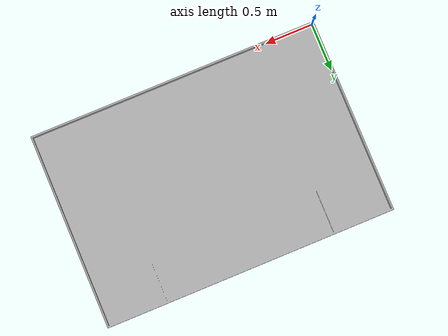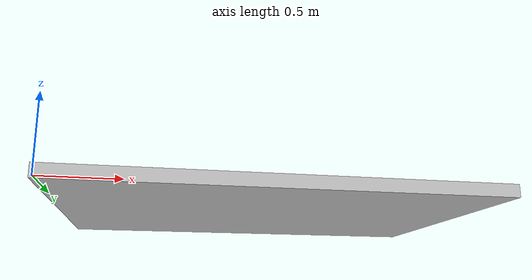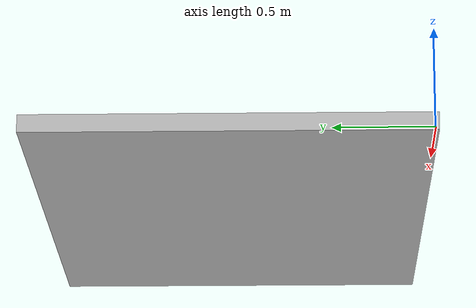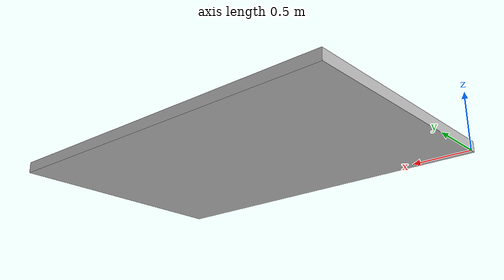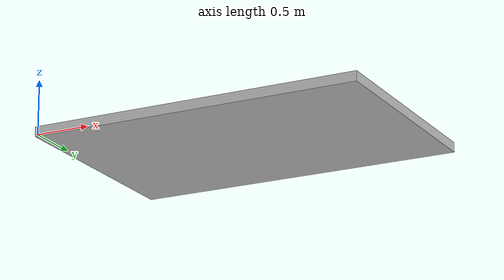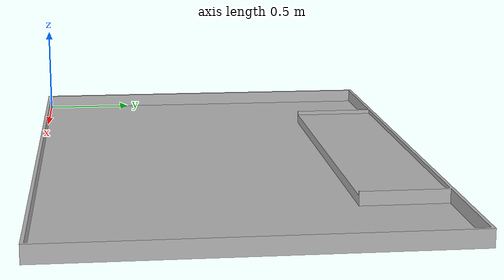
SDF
<?xml version='1.0'?>
<sdf version='1.5'>
    <model name="field">
        <static>1</static>
        <pose>0 0 -0.017 1.5708 0 -1.5708</pose>
        <link name="map">
            <collision name="collision">
                <geometry>
                    <mesh>
                        <uri>model://field/meshes/Eurobot2026_field.stl</uri>
                        <scale>0.001 0.001 0.001</scale>
                    </mesh>
                </geometry>
            </collision>
            <visual name="visual">
                <geometry>
                    <mesh>
                        <uri>model://field/meshes/Eurobot2026_field.stl</uri>
                        <scale>0.001 0.001 0.001</scale>
                    </mesh>
                </geometry>
            </visual>
        </link>
    </model>
</sdf>
